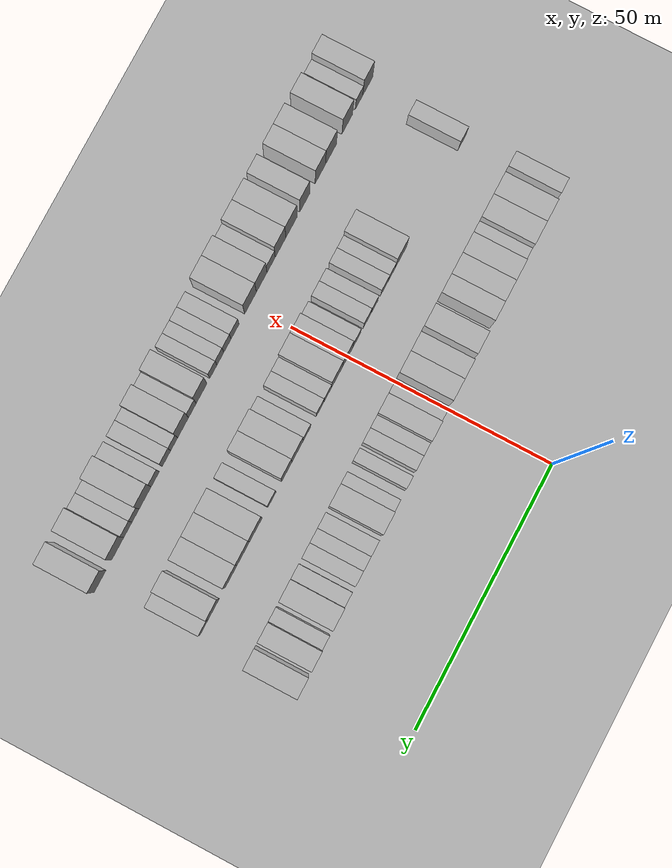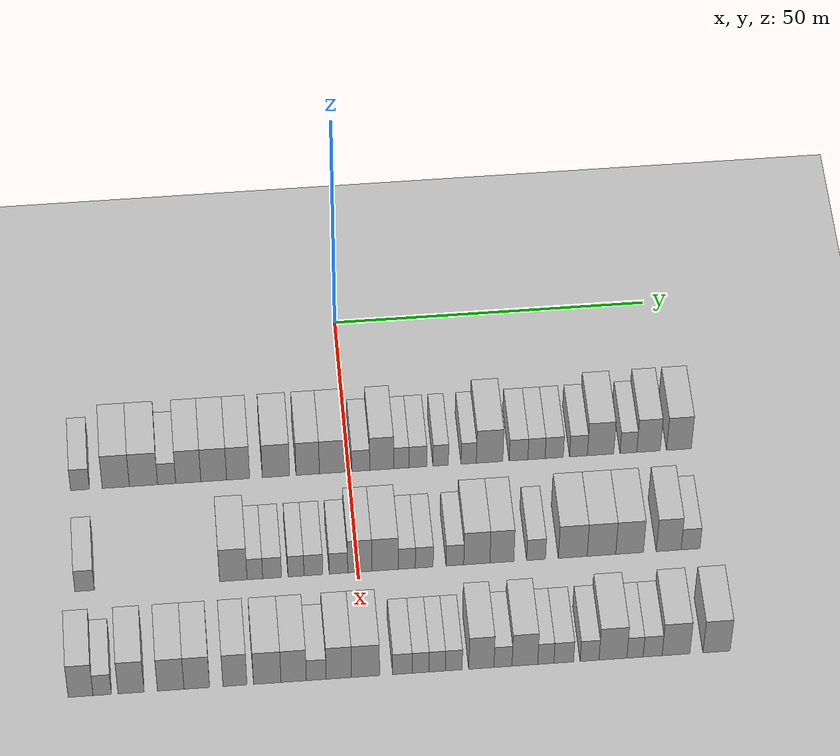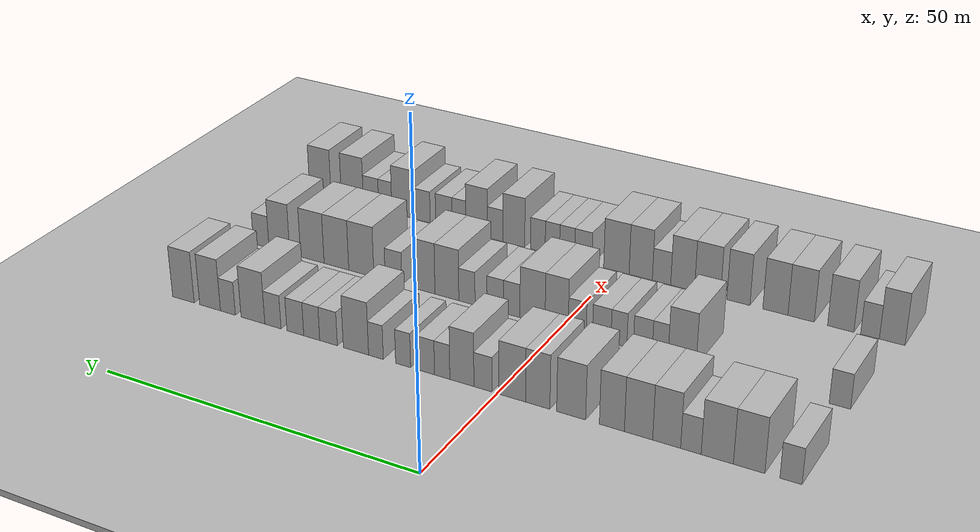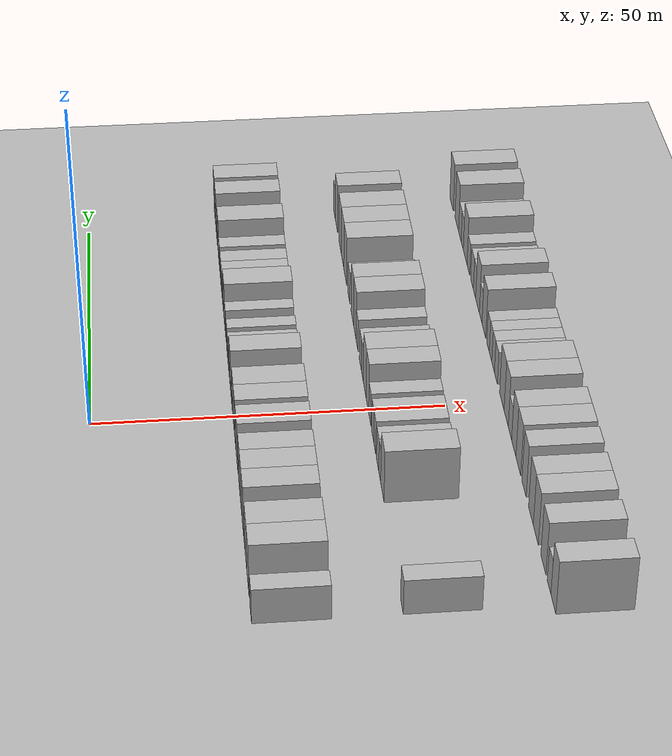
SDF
<sdf version="1.6">
 <world name="default">
  <include><name>ground_plane_1</name><uri>model://HANNAS_ground_plane</uri></include>
  <include>
   <name>ground_plane_2</name>
   <uri>model://HANNAS_ground_plane</uri>
   <pose>100 0 0  0 0 0</pose>
  </include>
  <model name="building_46">
   <static>1</static>
   <pose>25.0000 -42.1469 0 0.000000 0.000000 0.000000</pose>
   <link name="link">
    <pose>0 0 3.00 0 0 0</pose>
    <collision name="collision"><geometry><box><size>10.0000 2.9438 6.0000</size></box></geometry></collision>
    <visual name="visual">
     <cast_shadows>0</cast_shadows>
     <geometry><box><size>10.0000 2.9438 6.0000</size></box></geometry>
     <material>
      <script>
       <uri>model://HANNAS_wall/materials/scripts</uri>
       <uri>model://HANNAS_wall/materials/textures</uri>
       <name>vrc/HANNAS_wall</name>
      </script>
     </material>
    </visual>
   </link>
  </model>
  <model name="building_47">
   <static>1</static>
   <pose>25.0000 -36.5564 0 0.000000 0.000000 0.000000</pose>
   <link name="link">
    <pose>0 0 4.50 0 0 0</pose>
    <collision name="collision"><geometry><box><size>10.0000 4.2373 9.0000</size></box></geometry></collision>
    <visual name="visual">
     <cast_shadows>0</cast_shadows>
     <geometry><box><size>10.0000 4.2373 9.0000</size></box></geometry>
     <material>
      <script>
       <uri>model://HANNAS_wall/materials/scripts</uri>
       <uri>model://HANNAS_wall/materials/textures</uri>
       <name>vrc/HANNAS_wall</name>
      </script>
     </material>
    </visual>
   </link>
  </model>
  <model name="building_48">
   <static>1</static>
   <pose>25.0000 -32.2310 0 0.000000 0.000000 0.000000</pose>
   <link name="link">
    <pose>0 0 4.50 0 0 0</pose>
    <collision name="collision"><geometry><box><size>10.0000 4.4135 9.0000</size></box></geometry></collision>
    <visual name="visual">
     <cast_shadows>0</cast_shadows>
     <geometry><box><size>10.0000 4.4135 9.0000</size></box></geometry>
     <material>
      <script>
       <uri>model://HANNAS_wall/materials/scripts</uri>
       <uri>model://HANNAS_wall/materials/textures</uri>
       <name>vrc/HANNAS_wall</name>
      </script>
     </material>
    </visual>
   </link>
  </model>
  <model name="building_49">
   <static>1</static>
   <pose>25.0000 -28.6008 0 0.000000 0.000000 0.000000</pose>
   <link name="link">
    <pose>0 0 3.00 0 0 0</pose>
    <collision name="collision"><geometry><box><size>10.0000 2.8468 6.0000</size></box></geometry></collision>
    <visual name="visual">
     <cast_shadows>0</cast_shadows>
     <geometry><box><size>10.0000 2.8468 6.0000</size></box></geometry>
     <material>
      <script>
       <uri>model://HANNAS_wall/materials/scripts</uri>
       <uri>model://HANNAS_wall/materials/textures</uri>
       <name>vrc/HANNAS_wall</name>
      </script>
     </material>
    </visual>
   </link>
  </model>
  <model name="building_50">
   <static>1</static>
   <pose>25.0000 -25.2103 0 0.000000 0.000000 0.000000</pose>
   <link name="link">
    <pose>0 0 4.50 0 0 0</pose>
    <collision name="collision"><geometry><box><size>10.0000 3.9343 9.0000</size></box></geometry></collision>
    <visual name="visual">
     <cast_shadows>0</cast_shadows>
     <geometry><box><size>10.0000 3.9343 9.0000</size></box></geometry>
     <material>
      <script>
       <uri>model://HANNAS_wall/materials/scripts</uri>
       <uri>model://HANNAS_wall/materials/textures</uri>
       <name>vrc/HANNAS_wall</name>
      </script>
     </material>
    </visual>
   </link>
  </model>
  <model name="building_51">
   <static>1</static>
   <pose>25.0000 -21.2290 0 0.000000 0.000000 0.000000</pose>
   <link name="link">
    <pose>0 0 4.50 0 0 0</pose>
    <collision name="collision"><geometry><box><size>10.0000 4.0283 9.0000</size></box></geometry></collision>
    <visual name="visual">
     <cast_shadows>0</cast_shadows>
     <geometry><box><size>10.0000 4.0283 9.0000</size></box></geometry>
     <material>
      <script>
       <uri>model://HANNAS_wall/materials/scripts</uri>
       <uri>model://HANNAS_wall/materials/textures</uri>
       <name>vrc/HANNAS_wall</name>
      </script>
     </material>
    </visual>
   </link>
  </model>
  <model name="building_52">
   <static>1</static>
   <pose>25.0000 -17.4095 0 0.000000 0.000000 0.000000</pose>
   <link name="link">
    <pose>0 0 4.50 0 0 0</pose>
    <collision name="collision"><geometry><box><size>10.0000 3.6106 9.0000</size></box></geometry></collision>
    <visual name="visual">
     <cast_shadows>0</cast_shadows>
     <geometry><box><size>10.0000 3.6106 9.0000</size></box></geometry>
     <material>
      <script>
       <uri>model://HANNAS_wall/materials/scripts</uri>
       <uri>model://HANNAS_wall/materials/textures</uri>
       <name>vrc/HANNAS_wall</name>
      </script>
     </material>
    </visual>
   </link>
  </model>
  <model name="building_53">
   <static>1</static>
   <pose>25.0000 -11.4642 0 0.000000 0.000000 0.000000</pose>
   <link name="link">
    <pose>0 0 4.50 0 0 0</pose>
    <collision name="collision"><geometry><box><size>10.0000 4.2801 9.0000</size></box></geometry></collision>
    <visual name="visual">
     <cast_shadows>0</cast_shadows>
     <geometry><box><size>10.0000 4.2801 9.0000</size></box></geometry>
     <material>
      <script>
       <uri>model://HANNAS_wall/materials/scripts</uri>
       <uri>model://HANNAS_wall/materials/textures</uri>
       <name>vrc/HANNAS_wall</name>
      </script>
     </material>
    </visual>
   </link>
  </model>
  <model name="building_54">
   <static>1</static>
   <pose>25.0000 -6.4950 0 0.000000 0.000000 0.000000</pose>
   <link name="link">
    <pose>0 0 4.50 0 0 0</pose>
    <collision name="collision"><geometry><box><size>10.0000 3.6582 9.0000</size></box></geometry></collision>
    <visual name="visual">
     <cast_shadows>0</cast_shadows>
     <geometry><box><size>10.0000 3.6582 9.0000</size></box></geometry>
     <material>
      <script>
       <uri>model://HANNAS_wall/materials/scripts</uri>
       <uri>model://HANNAS_wall/materials/textures</uri>
       <name>vrc/HANNAS_wall</name>
      </script>
     </material>
    </visual>
   </link>
  </model>
  <model name="building_55">
   <static>1</static>
   <pose>25.0000 -2.6202 0 0.000000 0.000000 0.000000</pose>
   <link name="link">
    <pose>0 0 4.50 0 0 0</pose>
    <collision name="collision"><geometry><box><size>10.0000 4.0915 9.0000</size></box></geometry></collision>
    <visual name="visual">
     <cast_shadows>0</cast_shadows>
     <geometry><box><size>10.0000 4.0915 9.0000</size></box></geometry>
     <material>
      <script>
       <uri>model://HANNAS_wall/materials/scripts</uri>
       <uri>model://HANNAS_wall/materials/textures</uri>
       <name>vrc/HANNAS_wall</name>
      </script>
     </material>
    </visual>
   </link>
  </model>
  <model name="building_56">
   <static>1</static>
   <pose>25.0000 1.8327 0 0.000000 0.000000 0.000000</pose>
   <link name="link">
    <pose>0 0 3.00 0 0 0</pose>
    <collision name="collision"><geometry><box><size>10.0000 2.8143 6.0000</size></box></geometry></collision>
    <visual name="visual">
     <cast_shadows>0</cast_shadows>
     <geometry><box><size>10.0000 2.8143 6.0000</size></box></geometry>
     <material>
      <script>
       <uri>model://HANNAS_wall/materials/scripts</uri>
       <uri>model://HANNAS_wall/materials/textures</uri>
       <name>vrc/HANNAS_wall</name>
      </script>
     </material>
    </visual>
   </link>
  </model>
  <model name="building_57">
   <static>1</static>
   <pose>25.0000 5.1196 0 0.000000 0.000000 0.000000</pose>
   <link name="link">
    <pose>0 0 4.50 0 0 0</pose>
    <collision name="collision"><geometry><box><size>10.0000 3.7595 9.0000</size></box></geometry></collision>
    <visual name="visual">
     <cast_shadows>0</cast_shadows>
     <geometry><box><size>10.0000 3.7595 9.0000</size></box></geometry>
     <material>
      <script>
       <uri>model://HANNAS_wall/materials/scripts</uri>
       <uri>model://HANNAS_wall/materials/textures</uri>
       <name>vrc/HANNAS_wall</name>
      </script>
     </material>
    </visual>
   </link>
  </model>
  <model name="building_58">
   <static>1</static>
   <pose>25.0000 8.2092 0 0.000000 0.000000 0.000000</pose>
   <link name="link">
    <pose>0 0 3.00 0 0 0</pose>
    <collision name="collision"><geometry><box><size>10.0000 2.4197 6.0000</size></box></geometry></collision>
    <visual name="visual">
     <cast_shadows>0</cast_shadows>
     <geometry><box><size>10.0000 2.4197 6.0000</size></box></geometry>
     <material>
      <script>
       <uri>model://HANNAS_wall/materials/scripts</uri>
       <uri>model://HANNAS_wall/materials/textures</uri>
       <name>vrc/HANNAS_wall</name>
      </script>
     </material>
    </visual>
   </link>
  </model>
  <model name="building_59">
   <static>1</static>
   <pose>25.0000 10.8201 0 0.000000 0.000000 0.000000</pose>
   <link name="link">
    <pose>0 0 3.00 0 0 0</pose>
    <collision name="collision"><geometry><box><size>10.0000 2.8023 6.0000</size></box></geometry></collision>
    <visual name="visual">
     <cast_shadows>0</cast_shadows>
     <geometry><box><size>10.0000 2.8023 6.0000</size></box></geometry>
     <material>
      <script>
       <uri>model://HANNAS_wall/materials/scripts</uri>
       <uri>model://HANNAS_wall/materials/textures</uri>
       <name>vrc/HANNAS_wall</name>
      </script>
     </material>
    </visual>
   </link>
  </model>
  <model name="building_60">
   <static>1</static>
   <pose>25.0000 14.4315 0 0.000000 0.000000 0.000000</pose>
   <link name="link">
    <pose>0 0 3.00 0 0 0</pose>
    <collision name="collision"><geometry><box><size>10.0000 2.4205 6.0000</size></box></geometry></collision>
    <visual name="visual">
     <cast_shadows>0</cast_shadows>
     <geometry><box><size>10.0000 2.4205 6.0000</size></box></geometry>
     <material>
      <script>
       <uri>model://HANNAS_wall/materials/scripts</uri>
       <uri>model://HANNAS_wall/materials/textures</uri>
       <name>vrc/HANNAS_wall</name>
      </script>
     </material>
    </visual>
   </link>
  </model>
  <model name="building_61">
   <static>1</static>
   <pose>25.0000 18.8458 0 0.000000 0.000000 0.000000</pose>
   <link name="link">
    <pose>0 0 3.00 0 0 0</pose>
    <collision name="collision"><geometry><box><size>10.0000 2.4080 6.0000</size></box></geometry></collision>
    <visual name="visual">
     <cast_shadows>0</cast_shadows>
     <geometry><box><size>10.0000 2.4080 6.0000</size></box></geometry>
     <material>
      <script>
       <uri>model://HANNAS_wall/materials/scripts</uri>
       <uri>model://HANNAS_wall/materials/textures</uri>
       <name>vrc/HANNAS_wall</name>
      </script>
     </material>
    </visual>
   </link>
  </model>
  <model name="building_62">
   <static>1</static>
   <pose>25.0000 22.1373 0 0.000000 0.000000 0.000000</pose>
   <link name="link">
    <pose>0 0 4.50 0 0 0</pose>
    <collision name="collision"><geometry><box><size>10.0000 4.1751 9.0000</size></box></geometry></collision>
    <visual name="visual">
     <cast_shadows>0</cast_shadows>
     <geometry><box><size>10.0000 4.1751 9.0000</size></box></geometry>
     <material>
      <script>
       <uri>model://HANNAS_wall/materials/scripts</uri>
       <uri>model://HANNAS_wall/materials/textures</uri>
       <name>vrc/HANNAS_wall</name>
      </script>
     </material>
    </visual>
   </link>
  </model>
  <model name="building_63">
   <static>1</static>
   <pose>25.0000 26.7054 0 0.000000 0.000000 0.000000</pose>
   <link name="link">
    <pose>0 0 3.00 0 0 0</pose>
    <collision name="collision"><geometry><box><size>10.0000 2.9611 6.0000</size></box></geometry></collision>
    <visual name="visual">
     <cast_shadows>0</cast_shadows>
     <geometry><box><size>10.0000 2.9611 6.0000</size></box></geometry>
     <material>
      <script>
       <uri>model://HANNAS_wall/materials/scripts</uri>
       <uri>model://HANNAS_wall/materials/textures</uri>
       <name>vrc/HANNAS_wall</name>
      </script>
     </material>
    </visual>
   </link>
  </model>
  <model name="building_64">
   <static>1</static>
   <pose>25.0000 29.5410 0 0.000000 0.000000 0.000000</pose>
   <link name="link">
    <pose>0 0 3.00 0 0 0</pose>
    <collision name="collision"><geometry><box><size>10.0000 2.7100 6.0000</size></box></geometry></collision>
    <visual name="visual">
     <cast_shadows>0</cast_shadows>
     <geometry><box><size>10.0000 2.7100 6.0000</size></box></geometry>
     <material>
      <script>
       <uri>model://HANNAS_wall/materials/scripts</uri>
       <uri>model://HANNAS_wall/materials/textures</uri>
       <name>vrc/HANNAS_wall</name>
      </script>
     </material>
    </visual>
   </link>
  </model>
  <model name="building_65">
   <static>1</static>
   <pose>25.0000 32.3366 0 0.000000 0.000000 0.000000</pose>
   <link name="link">
    <pose>0 0 3.00 0 0 0</pose>
    <collision name="collision"><geometry><box><size>10.0000 2.8812 6.0000</size></box></geometry></collision>
    <visual name="visual">
     <cast_shadows>0</cast_shadows>
     <geometry><box><size>10.0000 2.8812 6.0000</size></box></geometry>
     <material>
      <script>
       <uri>model://HANNAS_wall/materials/scripts</uri>
       <uri>model://HANNAS_wall/materials/textures</uri>
       <name>vrc/HANNAS_wall</name>
      </script>
     </material>
    </visual>
   </link>
  </model>
  <model name="building_66">
   <static>1</static>
   <pose>25.0000 36.1805 0 0.000000 0.000000 0.000000</pose>
   <link name="link">
    <pose>0 0 3.00 0 0 0</pose>
    <collision name="collision"><geometry><box><size>10.0000 2.8066 6.0000</size></box></geometry></collision>
    <visual name="visual">
     <cast_shadows>0</cast_shadows>
     <geometry><box><size>10.0000 2.8066 6.0000</size></box></geometry>
     <material>
      <script>
       <uri>model://HANNAS_wall/materials/scripts</uri>
       <uri>model://HANNAS_wall/materials/textures</uri>
       <name>vrc/HANNAS_wall</name>
      </script>
     </material>
    </visual>
   </link>
  </model>
  <model name="building_67">
   <static>1</static>
   <pose>25.0000 39.6690 0 0.000000 0.000000 0.000000</pose>
   <link name="link">
    <pose>0 0 4.50 0 0 0</pose>
    <collision name="collision"><geometry><box><size>10.0000 4.1702 9.0000</size></box></geometry></collision>
    <visual name="visual">
     <cast_shadows>0</cast_shadows>
     <geometry><box><size>10.0000 4.1702 9.0000</size></box></geometry>
     <material>
      <script>
       <uri>model://HANNAS_wall/materials/scripts</uri>
       <uri>model://HANNAS_wall/materials/textures</uri>
       <name>vrc/HANNAS_wall</name>
      </script>
     </material>
    </visual>
   </link>
  </model>
  <model name="building_68">
   <static>1</static>
   <pose>25.0000 44.0798 0 0.000000 0.000000 0.000000</pose>
   <link name="link">
    <pose>0 0 3.00 0 0 0</pose>
    <collision name="collision"><geometry><box><size>10.0000 2.6514 6.0000</size></box></geometry></collision>
    <visual name="visual">
     <cast_shadows>0</cast_shadows>
     <geometry><box><size>10.0000 2.6514 6.0000</size></box></geometry>
     <material>
      <script>
       <uri>model://HANNAS_wall/materials/scripts</uri>
       <uri>model://HANNAS_wall/materials/textures</uri>
       <name>vrc/HANNAS_wall</name>
      </script>
     </material>
    </visual>
   </link>
  </model>
  <model name="building_69">
   <static>1</static>
   <pose>25.0000 47.2660 0 0.000000 0.000000 0.000000</pose>
   <link name="link">
    <pose>0 0 4.50 0 0 0</pose>
    <collision name="collision"><geometry><box><size>10.0000 3.7211 9.0000</size></box></geometry></collision>
    <visual name="visual">
     <cast_shadows>0</cast_shadows>
     <geometry><box><size>10.0000 3.7211 9.0000</size></box></geometry>
     <material>
      <script>
       <uri>model://HANNAS_wall/materials/scripts</uri>
       <uri>model://HANNAS_wall/materials/textures</uri>
       <name>vrc/HANNAS_wall</name>
      </script>
     </material>
    </visual>
   </link>
  </model>
  <model name="building_70">
   <static>1</static>
   <pose>25.0000 52.0918 0 0.000000 0.000000 0.000000</pose>
   <link name="link">
    <pose>0 0 4.50 0 0 0</pose>
    <collision name="collision"><geometry><box><size>10.0000 3.9304 9.0000</size></box></geometry></collision>
    <visual name="visual">
     <cast_shadows>0</cast_shadows>
     <geometry><box><size>10.0000 3.9304 9.0000</size></box></geometry>
     <material>
      <script>
       <uri>model://HANNAS_wall/materials/scripts</uri>
       <uri>model://HANNAS_wall/materials/textures</uri>
       <name>vrc/HANNAS_wall</name>
      </script>
     </material>
    </visual>
   </link>
  </model>
  <model name="building_165">
   <static>1</static>
   <pose>44.0000 -42.0768 0 0.000000 0.000000 0.000000</pose>
   <link name="link">
    <pose>0 0 3.00 0 0 0</pose>
    <collision name="collision"><geometry><box><size>10.0000 2.9766 6.0000</size></box></geometry></collision>
    <visual name="visual">
     <cast_shadows>0</cast_shadows>
     <geometry><box><size>10.0000 2.9766 6.0000</size></box></geometry>
     <material>
      <script>
       <uri>model://HANNAS_wall/materials/scripts</uri>
       <uri>model://HANNAS_wall/materials/textures</uri>
       <name>vrc/HANNAS_wall</name>
      </script>
     </material>
    </visual>
   </link>
  </model>
  <model name="building_166">
   <static>1</static>
   <pose>44.0000 -19.2634 0 0.000000 0.000000 0.000000</pose>
   <link name="link">
    <pose>0 0 4.50 0 0 0</pose>
    <collision name="collision"><geometry><box><size>10.0000 4.2167 9.0000</size></box></geometry></collision>
    <visual name="visual">
     <cast_shadows>0</cast_shadows>
     <geometry><box><size>10.0000 4.2167 9.0000</size></box></geometry>
     <material>
      <script>
       <uri>model://HANNAS_wall/materials/scripts</uri>
       <uri>model://HANNAS_wall/materials/textures</uri>
       <name>vrc/HANNAS_wall</name>
      </script>
     </material>
    </visual>
   </link>
  </model>
  <model name="building_167">
   <static>1</static>
   <pose>44.0000 -15.9523 0 0.000000 0.000000 0.000000</pose>
   <link name="link">
    <pose>0 0 3.00 0 0 0</pose>
    <collision name="collision"><geometry><box><size>10.0000 2.4055 6.0000</size></box></geometry></collision>
    <visual name="visual">
     <cast_shadows>0</cast_shadows>
     <geometry><box><size>10.0000 2.4055 6.0000</size></box></geometry>
     <material>
      <script>
       <uri>model://HANNAS_wall/materials/scripts</uri>
       <uri>model://HANNAS_wall/materials/textures</uri>
       <name>vrc/HANNAS_wall</name>
      </script>
     </material>
    </visual>
   </link>
  </model>
  <model name="building_168">
   <static>1</static>
   <pose>44.0000 -13.2957 0 0.000000 0.000000 0.000000</pose>
   <link name="link">
    <pose>0 0 3.00 0 0 0</pose>
    <collision name="collision"><geometry><box><size>10.0000 2.9077 6.0000</size></box></geometry></collision>
    <visual name="visual">
     <cast_shadows>0</cast_shadows>
     <geometry><box><size>10.0000 2.9077 6.0000</size></box></geometry>
     <material>
      <script>
       <uri>model://HANNAS_wall/materials/scripts</uri>
       <uri>model://HANNAS_wall/materials/textures</uri>
       <name>vrc/HANNAS_wall</name>
      </script>
     </material>
    </visual>
   </link>
  </model>
  <model name="building_169">
   <static>1</static>
   <pose>44.0000 -9.6110 0 0.000000 0.000000 0.000000</pose>
   <link name="link">
    <pose>0 0 3.00 0 0 0</pose>
    <collision name="collision"><geometry><box><size>10.0000 2.4618 6.0000</size></box></geometry></collision>
    <visual name="visual">
     <cast_shadows>0</cast_shadows>
     <geometry><box><size>10.0000 2.4618 6.0000</size></box></geometry>
     <material>
      <script>
       <uri>model://HANNAS_wall/materials/scripts</uri>
       <uri>model://HANNAS_wall/materials/textures</uri>
       <name>vrc/HANNAS_wall</name>
      </script>
     </material>
    </visual>
   </link>
  </model>
  <model name="building_170">
   <static>1</static>
   <pose>44.0000 -6.9357 0 0.000000 0.000000 0.000000</pose>
   <link name="link">
    <pose>0 0 3.00 0 0 0</pose>
    <collision name="collision"><geometry><box><size>10.0000 2.8888 6.0000</size></box></geometry></collision>
    <visual name="visual">
     <cast_shadows>0</cast_shadows>
     <geometry><box><size>10.0000 2.8888 6.0000</size></box></geometry>
     <material>
      <script>
       <uri>model://HANNAS_wall/materials/scripts</uri>
       <uri>model://HANNAS_wall/materials/textures</uri>
       <name>vrc/HANNAS_wall</name>
      </script>
     </material>
    </visual>
   </link>
  </model>
  <model name="building_171">
   <static>1</static>
   <pose>44.0000 -3.0705 0 0.000000 0.000000 0.000000</pose>
   <link name="link">
    <pose>0 0 3.00 0 0 0</pose>
    <collision name="collision"><geometry><box><size>10.0000 2.8416 6.0000</size></box></geometry></collision>
    <visual name="visual">
     <cast_shadows>0</cast_shadows>
     <geometry><box><size>10.0000 2.8416 6.0000</size></box></geometry>
     <material>
      <script>
       <uri>model://HANNAS_wall/materials/scripts</uri>
       <uri>model://HANNAS_wall/materials/textures</uri>
       <name>vrc/HANNAS_wall</name>
      </script>
     </material>
    </visual>
   </link>
  </model>
  <model name="building_172">
   <static>1</static>
   <pose>44.0000 0.2051 0 0.000000 0.000000 0.000000</pose>
   <link name="link">
    <pose>0 0 4.50 0 0 0</pose>
    <collision name="collision"><geometry><box><size>10.0000 3.7095 9.0000</size></box></geometry></collision>
    <visual name="visual">
     <cast_shadows>0</cast_shadows>
     <geometry><box><size>10.0000 3.7095 9.0000</size></box></geometry>
     <material>
      <script>
       <uri>model://HANNAS_wall/materials/scripts</uri>
       <uri>model://HANNAS_wall/materials/textures</uri>
       <name>vrc/HANNAS_wall</name>
      </script>
     </material>
    </visual>
   </link>
  </model>
  <model name="building_173">
   <static>1</static>
   <pose>44.0000 4.1022 0 0.000000 0.000000 0.000000</pose>
   <link name="link">
    <pose>0 0 4.50 0 0 0</pose>
    <collision name="collision"><geometry><box><size>10.0000 4.0847 9.0000</size></box></geometry></collision>
    <visual name="visual">
     <cast_shadows>0</cast_shadows>
     <geometry><box><size>10.0000 4.0847 9.0000</size></box></geometry>
     <material>
      <script>
       <uri>model://HANNAS_wall/materials/scripts</uri>
       <uri>model://HANNAS_wall/materials/textures</uri>
       <name>vrc/HANNAS_wall</name>
      </script>
     </material>
    </visual>
   </link>
  </model>
  <model name="building_174">
   <static>1</static>
   <pose>44.0000 7.4650 0 0.000000 0.000000 0.000000</pose>
   <link name="link">
    <pose>0 0 3.00 0 0 0</pose>
    <collision name="collision"><geometry><box><size>10.0000 2.6409 6.0000</size></box></geometry></collision>
    <visual name="visual">
     <cast_shadows>0</cast_shadows>
     <geometry><box><size>10.0000 2.6409 6.0000</size></box></geometry>
     <material>
      <script>
       <uri>model://HANNAS_wall/materials/scripts</uri>
       <uri>model://HANNAS_wall/materials/textures</uri>
       <name>vrc/HANNAS_wall</name>
      </script>
     </material>
    </visual>
   </link>
  </model>
  <model name="building_175">
   <static>1</static>
   <pose>44.0000 10.1681 0 0.000000 0.000000 0.000000</pose>
   <link name="link">
    <pose>0 0 3.00 0 0 0</pose>
    <collision name="collision"><geometry><box><size>10.0000 2.7651 6.0000</size></box></geometry></collision>
    <visual name="visual">
     <cast_shadows>0</cast_shadows>
     <geometry><box><size>10.0000 2.7651 6.0000</size></box></geometry>
     <material>
      <script>
       <uri>model://HANNAS_wall/materials/scripts</uri>
       <uri>model://HANNAS_wall/materials/textures</uri>
       <name>vrc/HANNAS_wall</name>
      </script>
     </material>
    </visual>
   </link>
  </model>
  <model name="building_176">
   <static>1</static>
   <pose>44.0000 14.9137 0 0.000000 0.000000 0.000000</pose>
   <link name="link">
    <pose>0 0 3.00 0 0 0</pose>
    <collision name="collision"><geometry><box><size>10.0000 2.7262 6.0000</size></box></geometry></collision>
    <visual name="visual">
     <cast_shadows>0</cast_shadows>
     <geometry><box><size>10.0000 2.7262 6.0000</size></box></geometry>
     <material>
      <script>
       <uri>model://HANNAS_wall/materials/scripts</uri>
       <uri>model://HANNAS_wall/materials/textures</uri>
       <name>vrc/HANNAS_wall</name>
      </script>
     </material>
    </visual>
   </link>
  </model>
  <model name="building_177">
   <static>1</static>
   <pose>44.0000 18.3020 0 0.000000 0.000000 0.000000</pose>
   <link name="link">
    <pose>0 0 4.50 0 0 0</pose>
    <collision name="collision"><geometry><box><size>10.0000 4.0505 9.0000</size></box></geometry></collision>
    <visual name="visual">
     <cast_shadows>0</cast_shadows>
     <geometry><box><size>10.0000 4.0505 9.0000</size></box></geometry>
     <material>
      <script>
       <uri>model://HANNAS_wall/materials/scripts</uri>
       <uri>model://HANNAS_wall/materials/textures</uri>
       <name>vrc/HANNAS_wall</name>
      </script>
     </material>
    </visual>
   </link>
  </model>
  <model name="building_178">
   <static>1</static>
   <pose>44.0000 22.1729 0 0.000000 0.000000 0.000000</pose>
   <link name="link">
    <pose>0 0 4.50 0 0 0</pose>
    <collision name="collision"><geometry><box><size>10.0000 3.6912 9.0000</size></box></geometry></collision>
    <visual name="visual">
     <cast_shadows>0</cast_shadows>
     <geometry><box><size>10.0000 3.6912 9.0000</size></box></geometry>
     <material>
      <script>
       <uri>model://HANNAS_wall/materials/scripts</uri>
       <uri>model://HANNAS_wall/materials/textures</uri>
       <name>vrc/HANNAS_wall</name>
      </script>
     </material>
    </visual>
   </link>
  </model>
  <model name="building_179">
   <static>1</static>
   <pose>44.0000 27.4745 0 0.000000 0.000000 0.000000</pose>
   <link name="link">
    <pose>0 0 3.00 0 0 0</pose>
    <collision name="collision"><geometry><box><size>10.0000 2.9121 6.0000</size></box></geometry></collision>
    <visual name="visual">
     <cast_shadows>0</cast_shadows>
     <geometry><box><size>10.0000 2.9121 6.0000</size></box></geometry>
     <material>
      <script>
       <uri>model://HANNAS_wall/materials/scripts</uri>
       <uri>model://HANNAS_wall/materials/textures</uri>
       <name>vrc/HANNAS_wall</name>
      </script>
     </material>
    </visual>
   </link>
  </model>
  <model name="building_180">
   <static>1</static>
   <pose>44.0000 33.1659 0 0.000000 0.000000 0.000000</pose>
   <link name="link">
    <pose>0 0 4.50 0 0 0</pose>
    <collision name="collision"><geometry><box><size>10.0000 4.4706 9.0000</size></box></geometry></collision>
    <visual name="visual">
     <cast_shadows>0</cast_shadows>
     <geometry><box><size>10.0000 4.4706 9.0000</size></box></geometry>
     <material>
      <script>
       <uri>model://HANNAS_wall/materials/scripts</uri>
       <uri>model://HANNAS_wall/materials/textures</uri>
       <name>vrc/HANNAS_wall</name>
      </script>
     </material>
    </visual>
   </link>
  </model>
  <model name="building_181">
   <static>1</static>
   <pose>44.0000 37.6222 0 0.000000 0.000000 0.000000</pose>
   <link name="link">
    <pose>0 0 4.50 0 0 0</pose>
    <collision name="collision"><geometry><box><size>10.0000 4.4419 9.0000</size></box></geometry></collision>
    <visual name="visual">
     <cast_shadows>0</cast_shadows>
     <geometry><box><size>10.0000 4.4419 9.0000</size></box></geometry>
     <material>
      <script>
       <uri>model://HANNAS_wall/materials/scripts</uri>
       <uri>model://HANNAS_wall/materials/textures</uri>
       <name>vrc/HANNAS_wall</name>
      </script>
     </material>
    </visual>
   </link>
  </model>
  <model name="building_182">
   <static>1</static>
   <pose>44.0000 41.9887 0 0.000000 0.000000 0.000000</pose>
   <link name="link">
    <pose>0 0 4.50 0 0 0</pose>
    <collision name="collision"><geometry><box><size>10.0000 4.2912 9.0000</size></box></geometry></collision>
    <visual name="visual">
     <cast_shadows>0</cast_shadows>
     <geometry><box><size>10.0000 4.2912 9.0000</size></box></geometry>
     <material>
      <script>
       <uri>model://HANNAS_wall/materials/scripts</uri>
       <uri>model://HANNAS_wall/materials/textures</uri>
       <name>vrc/HANNAS_wall</name>
      </script>
     </material>
    </visual>
   </link>
  </model>
  <model name="building_183">
   <static>1</static>
   <pose>44.0000 48.0656 0 0.000000 0.000000 0.000000</pose>
   <link name="link">
    <pose>0 0 4.50 0 0 0</pose>
    <collision name="collision"><geometry><box><size>10.0000 3.8625 9.0000</size></box></geometry></collision>
    <visual name="visual">
     <cast_shadows>0</cast_shadows>
     <geometry><box><size>10.0000 3.8625 9.0000</size></box></geometry>
     <material>
      <script>
       <uri>model://HANNAS_wall/materials/scripts</uri>
       <uri>model://HANNAS_wall/materials/textures</uri>
       <name>vrc/HANNAS_wall</name>
      </script>
     </material>
    </visual>
   </link>
  </model>
  <model name="building_184">
   <static>1</static>
   <pose>44.0000 51.4627 0 0.000000 0.000000 0.000000</pose>
   <link name="link">
    <pose>0 0 3.00 0 0 0</pose>
    <collision name="collision"><geometry><box><size>10.0000 2.9318 6.0000</size></box></geometry></collision>
    <visual name="visual">
     <cast_shadows>0</cast_shadows>
     <geometry><box><size>10.0000 2.9318 6.0000</size></box></geometry>
     <material>
      <script>
       <uri>model://HANNAS_wall/materials/scripts</uri>
       <uri>model://HANNAS_wall/materials/textures</uri>
       <name>vrc/HANNAS_wall</name>
      </script>
     </material>
    </visual>
   </link>
  </model>
  <model name="building_287">
   <static>1</static>
   <pose>63.0000 -43.3397 0 0.000000 0.000000 0.000000</pose>
   <link name="link">
    <pose>0 0 4.50 0 0 0</pose>
    <collision name="collision"><geometry><box><size>10.0000 3.7291 9.0000</size></box></geometry></collision>
    <visual name="visual">
     <cast_shadows>0</cast_shadows>
     <geometry><box><size>10.0000 3.7291 9.0000</size></box></geometry>
     <material>
      <script>
       <uri>model://HANNAS_wall/materials/scripts</uri>
       <uri>model://HANNAS_wall/materials/textures</uri>
       <name>vrc/HANNAS_wall</name>
      </script>
     </material>
    </visual>
   </link>
  </model>
  <model name="building_288">
   <static>1</static>
   <pose>63.0000 -40.0991 0 0.000000 0.000000 0.000000</pose>
   <link name="link">
    <pose>0 0 3.00 0 0 0</pose>
    <collision name="collision"><geometry><box><size>10.0000 2.7519 6.0000</size></box></geometry></collision>
    <visual name="visual">
     <cast_shadows>0</cast_shadows>
     <geometry><box><size>10.0000 2.7519 6.0000</size></box></geometry>
     <material>
      <script>
       <uri>model://HANNAS_wall/materials/scripts</uri>
       <uri>model://HANNAS_wall/materials/textures</uri>
       <name>vrc/HANNAS_wall</name>
      </script>
     </material>
    </visual>
   </link>
  </model>
  <model name="building_289">
   <static>1</static>
   <pose>63.0000 -35.7587 0 0.000000 0.000000 0.000000</pose>
   <link name="link">
    <pose>0 0 4.50 0 0 0</pose>
    <collision name="collision"><geometry><box><size>10.0000 3.9291 9.0000</size></box></geometry></collision>
    <visual name="visual">
     <cast_shadows>0</cast_shadows>
     <geometry><box><size>10.0000 3.9291 9.0000</size></box></geometry>
     <material>
      <script>
       <uri>model://HANNAS_wall/materials/scripts</uri>
       <uri>model://HANNAS_wall/materials/textures</uri>
       <name>vrc/HANNAS_wall</name>
      </script>
     </material>
    </visual>
   </link>
  </model>
  <model name="building_290">
   <static>1</static>
   <pose>63.0000 -29.7932 0 0.000000 0.000000 0.000000</pose>
   <link name="link">
    <pose>0 0 4.50 0 0 0</pose>
    <collision name="collision"><geometry><box><size>10.0000 4.0018 9.0000</size></box></geometry></collision>
    <visual name="visual">
     <cast_shadows>0</cast_shadows>
     <geometry><box><size>10.0000 4.0018 9.0000</size></box></geometry>
     <material>
      <script>
       <uri>model://HANNAS_wall/materials/scripts</uri>
       <uri>model://HANNAS_wall/materials/textures</uri>
       <name>vrc/HANNAS_wall</name>
      </script>
     </material>
    </visual>
   </link>
  </model>
  <model name="building_291">
   <static>1</static>
   <pose>63.0000 -25.8613 0 0.000000 0.000000 0.000000</pose>
   <link name="link">
    <pose>0 0 4.50 0 0 0</pose>
    <collision name="collision"><geometry><box><size>10.0000 3.8619 9.0000</size></box></geometry></collision>
    <visual name="visual">
     <cast_shadows>0</cast_shadows>
     <geometry><box><size>10.0000 3.8619 9.0000</size></box></geometry>
     <material>
      <script>
       <uri>model://HANNAS_wall/materials/scripts</uri>
       <uri>model://HANNAS_wall/materials/textures</uri>
       <name>vrc/HANNAS_wall</name>
      </script>
     </material>
    </visual>
   </link>
  </model>
  <model name="building_292">
   <static>1</static>
   <pose>63.0000 -20.1186 0 0.000000 0.000000 0.000000</pose>
   <link name="link">
    <pose>0 0 4.50 0 0 0</pose>
    <collision name="collision"><geometry><box><size>10.0000 3.6236 9.0000</size></box></geometry></collision>
    <visual name="visual">
     <cast_shadows>0</cast_shadows>
     <geometry><box><size>10.0000 3.6236 9.0000</size></box></geometry>
     <material>
      <script>
       <uri>model://HANNAS_wall/materials/scripts</uri>
       <uri>model://HANNAS_wall/materials/textures</uri>
       <name>vrc/HANNAS_wall</name>
      </script>
     </material>
    </visual>
   </link>
  </model>
  <model name="building_293">
   <static>1</static>
   <pose>63.0000 -15.2354 0 0.000000 0.000000 0.000000</pose>
   <link name="link">
    <pose>0 0 4.50 0 0 0</pose>
    <collision name="collision"><geometry><box><size>10.0000 4.1429 9.0000</size></box></geometry></collision>
    <visual name="visual">
     <cast_shadows>0</cast_shadows>
     <geometry><box><size>10.0000 4.1429 9.0000</size></box></geometry>
     <material>
      <script>
       <uri>model://HANNAS_wall/materials/scripts</uri>
       <uri>model://HANNAS_wall/materials/textures</uri>
       <name>vrc/HANNAS_wall</name>
      </script>
     </material>
    </visual>
   </link>
  </model>
  <model name="building_294">
   <static>1</static>
   <pose>63.0000 -11.2492 0 0.000000 0.000000 0.000000</pose>
   <link name="link">
    <pose>0 0 4.50 0 0 0</pose>
    <collision name="collision"><geometry><box><size>10.0000 3.8296 9.0000</size></box></geometry></collision>
    <visual name="visual">
     <cast_shadows>0</cast_shadows>
     <geometry><box><size>10.0000 3.8296 9.0000</size></box></geometry>
     <material>
      <script>
       <uri>model://HANNAS_wall/materials/scripts</uri>
       <uri>model://HANNAS_wall/materials/textures</uri>
       <name>vrc/HANNAS_wall</name>
      </script>
     </material>
    </visual>
   </link>
  </model>
  <model name="building_295">
   <static>1</static>
   <pose>63.0000 -7.8352 0 0.000000 0.000000 0.000000</pose>
   <link name="link">
    <pose>0 0 3.00 0 0 0</pose>
    <collision name="collision"><geometry><box><size>10.0000 2.9983 6.0000</size></box></geometry></collision>
    <visual name="visual">
     <cast_shadows>0</cast_shadows>
     <geometry><box><size>10.0000 2.9983 6.0000</size></box></geometry>
     <material>
      <script>
       <uri>model://HANNAS_wall/materials/scripts</uri>
       <uri>model://HANNAS_wall/materials/textures</uri>
       <name>vrc/HANNAS_wall</name>
      </script>
     </material>
    </visual>
   </link>
  </model>
  <model name="building_296">
   <static>1</static>
   <pose>63.0000 -4.4239 0 0.000000 0.000000 0.000000</pose>
   <link name="link">
    <pose>0 0 4.50 0 0 0</pose>
    <collision name="collision"><geometry><box><size>10.0000 3.8244 9.0000</size></box></geometry></collision>
    <visual name="visual">
     <cast_shadows>0</cast_shadows>
     <geometry><box><size>10.0000 3.8244 9.0000</size></box></geometry>
     <material>
      <script>
       <uri>model://HANNAS_wall/materials/scripts</uri>
       <uri>model://HANNAS_wall/materials/textures</uri>
       <name>vrc/HANNAS_wall</name>
      </script>
     </material>
    </visual>
   </link>
  </model>
  <model name="building_297">
   <static>1</static>
   <pose>63.0000 -0.3941 0 0.000000 0.000000 0.000000</pose>
   <link name="link">
    <pose>0 0 4.50 0 0 0</pose>
    <collision name="collision"><geometry><box><size>10.0000 4.2353 9.0000</size></box></geometry></collision>
    <visual name="visual">
     <cast_shadows>0</cast_shadows>
     <geometry><box><size>10.0000 4.2353 9.0000</size></box></geometry>
     <material>
      <script>
       <uri>model://HANNAS_wall/materials/scripts</uri>
       <uri>model://HANNAS_wall/materials/textures</uri>
       <name>vrc/HANNAS_wall</name>
      </script>
     </material>
    </visual>
   </link>
  </model>
  <model name="building_298">
   <static>1</static>
   <pose>63.0000 5.1886 0 0.000000 0.000000 0.000000</pose>
   <link name="link">
    <pose>0 0 3.00 0 0 0</pose>
    <collision name="collision"><geometry><box><size>10.0000 2.9300 6.0000</size></box></geometry></collision>
    <visual name="visual">
     <cast_shadows>0</cast_shadows>
     <geometry><box><size>10.0000 2.9300 6.0000</size></box></geometry>
     <material>
      <script>
       <uri>model://HANNAS_wall/materials/scripts</uri>
       <uri>model://HANNAS_wall/materials/textures</uri>
       <name>vrc/HANNAS_wall</name>
      </script>
     </material>
    </visual>
   </link>
  </model>
  <model name="building_299">
   <static>1</static>
   <pose>63.0000 7.9398 0 0.000000 0.000000 0.000000</pose>
   <link name="link">
    <pose>0 0 3.00 0 0 0</pose>
    <collision name="collision"><geometry><box><size>10.0000 2.5723 6.0000</size></box></geometry></collision>
    <visual name="visual">
     <cast_shadows>0</cast_shadows>
     <geometry><box><size>10.0000 2.5723 6.0000</size></box></geometry>
     <material>
      <script>
       <uri>model://HANNAS_wall/materials/scripts</uri>
       <uri>model://HANNAS_wall/materials/textures</uri>
       <name>vrc/HANNAS_wall</name>
      </script>
     </material>
    </visual>
   </link>
  </model>
  <model name="building_300">
   <static>1</static>
   <pose>63.0000 10.4610 0 0.000000 0.000000 0.000000</pose>
   <link name="link">
    <pose>0 0 3.00 0 0 0</pose>
    <collision name="collision"><geometry><box><size>10.0000 2.4702 6.0000</size></box></geometry></collision>
    <visual name="visual">
     <cast_shadows>0</cast_shadows>
     <geometry><box><size>10.0000 2.4702 6.0000</size></box></geometry>
     <material>
      <script>
       <uri>model://HANNAS_wall/materials/scripts</uri>
       <uri>model://HANNAS_wall/materials/textures</uri>
       <name>vrc/HANNAS_wall</name>
      </script>
     </material>
    </visual>
   </link>
  </model>
  <model name="building_301">
   <static>1</static>
   <pose>63.0000 12.9720 0 0.000000 0.000000 0.000000</pose>
   <link name="link">
    <pose>0 0 3.00 0 0 0</pose>
    <collision name="collision"><geometry><box><size>10.0000 2.5517 6.0000</size></box></geometry></collision>
    <visual name="visual">
     <cast_shadows>0</cast_shadows>
     <geometry><box><size>10.0000 2.5517 6.0000</size></box></geometry>
     <material>
      <script>
       <uri>model://HANNAS_wall/materials/scripts</uri>
       <uri>model://HANNAS_wall/materials/textures</uri>
       <name>vrc/HANNAS_wall</name>
      </script>
     </material>
    </visual>
   </link>
  </model>
  <model name="building_302">
   <static>1</static>
   <pose>63.0000 17.1630 0 0.000000 0.000000 0.000000</pose>
   <link name="link">
    <pose>0 0 4.50 0 0 0</pose>
    <collision name="collision"><geometry><box><size>10.0000 3.8303 9.0000</size></box></geometry></collision>
    <visual name="visual">
     <cast_shadows>0</cast_shadows>
     <geometry><box><size>10.0000 3.8303 9.0000</size></box></geometry>
     <material>
      <script>
       <uri>model://HANNAS_wall/materials/scripts</uri>
       <uri>model://HANNAS_wall/materials/textures</uri>
       <name>vrc/HANNAS_wall</name>
      </script>
     </material>
    </visual>
   </link>
  </model>
  <model name="building_303">
   <static>1</static>
   <pose>63.0000 20.4433 0 0.000000 0.000000 0.000000</pose>
   <link name="link">
    <pose>0 0 3.00 0 0 0</pose>
    <collision name="collision"><geometry><box><size>10.0000 2.7303 6.0000</size></box></geometry></collision>
    <visual name="visual">
     <cast_shadows>0</cast_shadows>
     <geometry><box><size>10.0000 2.7303 6.0000</size></box></geometry>
     <material>
      <script>
       <uri>model://HANNAS_wall/materials/scripts</uri>
       <uri>model://HANNAS_wall/materials/textures</uri>
       <name>vrc/HANNAS_wall</name>
      </script>
     </material>
    </visual>
   </link>
  </model>
  <model name="building_304">
   <static>1</static>
   <pose>63.0000 23.7604 0 0.000000 0.000000 0.000000</pose>
   <link name="link">
    <pose>0 0 4.50 0 0 0</pose>
    <collision name="collision"><geometry><box><size>10.0000 3.9040 9.0000</size></box></geometry></collision>
    <visual name="visual">
     <cast_shadows>0</cast_shadows>
     <geometry><box><size>10.0000 3.9040 9.0000</size></box></geometry>
     <material>
      <script>
       <uri>model://HANNAS_wall/materials/scripts</uri>
       <uri>model://HANNAS_wall/materials/textures</uri>
       <name>vrc/HANNAS_wall</name>
      </script>
     </material>
    </visual>
   </link>
  </model>
  <model name="building_305">
   <static>1</static>
   <pose>63.0000 26.9421 0 0.000000 0.000000 0.000000</pose>
   <link name="link">
    <pose>0 0 3.00 0 0 0</pose>
    <collision name="collision"><geometry><box><size>10.0000 2.4592 6.0000</size></box></geometry></collision>
    <visual name="visual">
     <cast_shadows>0</cast_shadows>
     <geometry><box><size>10.0000 2.4592 6.0000</size></box></geometry>
     <material>
      <script>
       <uri>model://HANNAS_wall/materials/scripts</uri>
       <uri>model://HANNAS_wall/materials/textures</uri>
       <name>vrc/HANNAS_wall</name>
      </script>
     </material>
    </visual>
   </link>
  </model>
  <model name="building_306">
   <static>1</static>
   <pose>63.0000 29.6715 0 0.000000 0.000000 0.000000</pose>
   <link name="link">
    <pose>0 0 3.00 0 0 0</pose>
    <collision name="collision"><geometry><box><size>10.0000 2.9997 6.0000</size></box></geometry></collision>
    <visual name="visual">
     <cast_shadows>0</cast_shadows>
     <geometry><box><size>10.0000 2.9997 6.0000</size></box></geometry>
     <material>
      <script>
       <uri>model://HANNAS_wall/materials/scripts</uri>
       <uri>model://HANNAS_wall/materials/textures</uri>
       <name>vrc/HANNAS_wall</name>
      </script>
     </material>
    </visual>
   </link>
  </model>
  <model name="building_307">
   <static>1</static>
   <pose>63.0000 33.6045 0 0.000000 0.000000 0.000000</pose>
   <link name="link">
    <pose>0 0 3.00 0 0 0</pose>
    <collision name="collision"><geometry><box><size>10.0000 2.8662 6.0000</size></box></geometry></collision>
    <visual name="visual">
     <cast_shadows>0</cast_shadows>
     <geometry><box><size>10.0000 2.8662 6.0000</size></box></geometry>
     <material>
      <script>
       <uri>model://HANNAS_wall/materials/scripts</uri>
       <uri>model://HANNAS_wall/materials/textures</uri>
       <name>vrc/HANNAS_wall</name>
      </script>
     </material>
    </visual>
   </link>
  </model>
  <model name="building_308">
   <static>1</static>
   <pose>63.0000 37.1640 0 0.000000 0.000000 0.000000</pose>
   <link name="link">
    <pose>0 0 4.50 0 0 0</pose>
    <collision name="collision"><geometry><box><size>10.0000 4.2527 9.0000</size></box></geometry></collision>
    <visual name="visual">
     <cast_shadows>0</cast_shadows>
     <geometry><box><size>10.0000 4.2527 9.0000</size></box></geometry>
     <material>
      <script>
       <uri>model://HANNAS_wall/materials/scripts</uri>
       <uri>model://HANNAS_wall/materials/textures</uri>
       <name>vrc/HANNAS_wall</name>
      </script>
     </material>
    </visual>
   </link>
  </model>
  <model name="building_309">
   <static>1</static>
   <pose>63.0000 40.5279 0 0.000000 0.000000 0.000000</pose>
   <link name="link">
    <pose>0 0 3.00 0 0 0</pose>
    <collision name="collision"><geometry><box><size>10.0000 2.4752 6.0000</size></box></geometry></collision>
    <visual name="visual">
     <cast_shadows>0</cast_shadows>
     <geometry><box><size>10.0000 2.4752 6.0000</size></box></geometry>
     <material>
      <script>
       <uri>model://HANNAS_wall/materials/scripts</uri>
       <uri>model://HANNAS_wall/materials/textures</uri>
       <name>vrc/HANNAS_wall</name>
      </script>
     </material>
    </visual>
   </link>
  </model>
  <model name="building_310">
   <static>1</static>
   <pose>63.0000 43.2118 0 0.000000 0.000000 0.000000</pose>
   <link name="link">
    <pose>0 0 3.00 0 0 0</pose>
    <collision name="collision"><geometry><box><size>10.0000 2.8926 6.0000</size></box></geometry></collision>
    <visual name="visual">
     <cast_shadows>0</cast_shadows>
     <geometry><box><size>10.0000 2.8926 6.0000</size></box></geometry>
     <material>
      <script>
       <uri>model://HANNAS_wall/materials/scripts</uri>
       <uri>model://HANNAS_wall/materials/textures</uri>
       <name>vrc/HANNAS_wall</name>
      </script>
     </material>
    </visual>
   </link>
  </model>
  <model name="building_311">
   <static>1</static>
   <pose>63.0000 46.7725 0 0.000000 0.000000 0.000000</pose>
   <link name="link">
    <pose>0 0 4.50 0 0 0</pose>
    <collision name="collision"><geometry><box><size>10.0000 4.2289 9.0000</size></box></geometry></collision>
    <visual name="visual">
     <cast_shadows>0</cast_shadows>
     <geometry><box><size>10.0000 4.2289 9.0000</size></box></geometry>
     <material>
      <script>
       <uri>model://HANNAS_wall/materials/scripts</uri>
       <uri>model://HANNAS_wall/materials/textures</uri>
       <name>vrc/HANNAS_wall</name>
      </script>
     </material>
    </visual>
   </link>
  </model>
  <model name="building_312">
   <static>1</static>
   <pose>63.0000 52.9628 0 0.000000 0.000000 0.000000</pose>
   <link name="link">
    <pose>0 0 4.50 0 0 0</pose>
    <collision name="collision"><geometry><box><size>10.0000 4.1516 9.0000</size></box></geometry></collision>
    <visual name="visual">
     <cast_shadows>0</cast_shadows>
     <geometry><box><size>10.0000 4.1516 9.0000</size></box></geometry>
     <material>
      <script>
       <uri>model://HANNAS_wall/materials/scripts</uri>
       <uri>model://HANNAS_wall/materials/textures</uri>
       <name>vrc/HANNAS_wall</name>
      </script>
     </material>
    </visual>
   </link>
  </model>
 </world>
</sdf>
